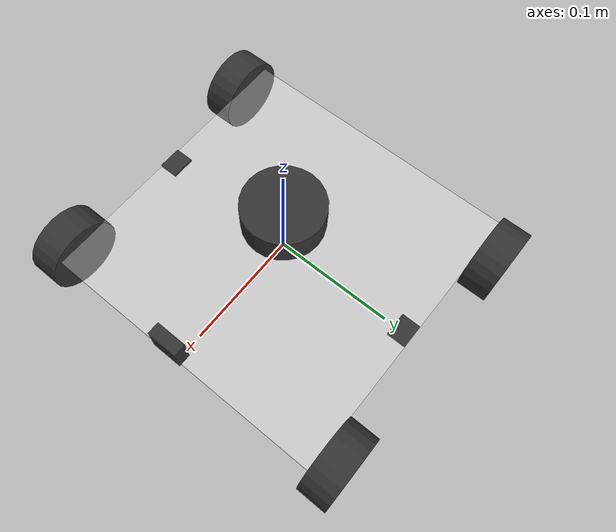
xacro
<?xml version="1.0"?>
<robot xmlns:xacro= "http://www.ros.org/wiki/xacro" name="roomba">
    <xacro:include filename="robot_core.xacro"/>
    <xacro:include filename="ros2_control.xacro"/>
    <xacro:include filename="lidar.xacro"/>
    <xacro:include filename="imu.xacro"/>
    <xacro:include filename="camera.xacro"/>
</robot>

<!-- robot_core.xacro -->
<robot xmlns:xacro= "http://www.ros.org/wiki/xacro">

    <xacro:include filename ="inertial_macros.xacro"/>

    <material name = "acrylic">
        <color rgba="1 1 1 0.3"/>
    </material>

    <material name = "black">
        <color rgba ="0.2 0.2 0.2 1"/>
    </material>

    <!-- Base Link -->
    <link name = "base_link">
    </link>

    <!-- BASE_FOOTPRINT_LINK -->
    <joint name = "base_footprint_joint" type = "fixed">
        <parent link = "base_link"/>
        <child link="base_footprint"/>
        <origin xyz = "0 0 0" rpy="0 0 0"/>
    </joint>

    <link name = "base_footprint">

    </link>

    <!-- Chassis Link -->
    <joint name = "chassis_joint" type = "fixed">
        <parent link = "base_link"/>
        <child link = "chassis"/>
        <origin xyz = "0 0 0"/>
    </joint>

    <link name = "chassis">
        <visual>
            <origin xyz = "0 0 0.0015"/>
            <geometry>
                <box size = "0.25 0.25 0.003"/>
            </geometry>
            <material name = "acrylic"/>
        </visual>
        <collision>
            <origin xyz = "0 0 0.0015"/>
            <geometry>
                <box size = "0.25 0.25 0.003"/>
            </geometry>
        </collision>
        <xacro:inertial_box mass = "0.12" x = "0.25" y = "0.25" z = "0.003">
            <origin xyz = "0 0 0.0015" rpy = "0 0 0"/>
        </xacro:inertial_box>
    </link>

    <gazebo reference="chassis">
        <material>Gazebo/GreyTransparent</material>
    </gazebo>

    <!-- Left Front Wheel Link -->
    <joint name = "left_front_wheel_joint" type = "continuous">
        <parent link = "base_link"/>
        <child link = "left_front_wheel"/>
        <origin xyz = "0.105191 0.137497 -0.01597" rpy = "-${pi/2} 0 0 "/>
        <axis xyz = "0 0 1"/>
    </joint>

    <link name = "left_front_wheel">
        <visual>
            <geometry>
                <cylinder radius="0.0325" length="0.026"/>
            </geometry>
            <material name = "black"/>
        </visual>
        <collision>
            <geometry>
                <sphere radius="0.0325" />
            </geometry>
        </collision>
        <xacro:inertial_cylinder mass = "0.1" length = "0.026" radius = "0.0325">
            <orgin xyz = "0 0 0" rpy = "0 0 0" />
        </xacro:inertial_cylinder>
    </link>

    <gazebo reference="left_front_wheel">
        <material>Gazebo/FlatBlack</material>
    </gazebo>

    <!-- Right Front Wheel Link -->
    <joint name = "right_front_wheel_joint" type = "continuous">
        <parent link = "base_link"/>
        <child link = "right_front_wheel"/>
        <origin xyz = "0.105191 -0.137497 -0.01597" rpy = "${pi/2} 0 0 "/>
        <axis xyz = "0 0 -1"/>
    </joint>

    <link name = "right_front_wheel">
        <visual>
            <geometry>
                <cylinder radius="0.0325" length="0.026"/>
            </geometry>
            <material name = "black"/>
        </visual>
        <collision>
            <geometry>
                <sphere radius="0.0325" />
            </geometry>
        </collision>
        <xacro:inertial_cylinder mass = "0.1" length = "0.026" radius = "0.0325">
            <orgin xyz = "0 0 0" rpy = "0 0 0" />
        </xacro:inertial_cylinder>
    </link>

    <gazebo reference="right_front_wheel">
        <material>Gazebo/FlatBlack</material>
    </gazebo>

    <!-- Left Back Wheel Link -->
    <joint name = "left_back_wheel_joint" type = "continuous">
        <parent link = "base_link"/>
        <child link = "left_back_wheel"/>
        <origin xyz = "-0.105191 0.137497 -0.01597" rpy = "-${pi/2} 0 0 "/>
        <axis xyz = "0 0 1"/>
    </joint>

    <link name = "left_back_wheel">
        <visual>
            <geometry>
                <cylinder radius="0.0325" length="0.026"/>
            </geometry>
            <material name = "black"/>
        </visual>
        <collision>
            <geometry>
                <sphere radius="0.0325" />
            </geometry>
        </collision>
        <xacro:inertial_cylinder mass = "0.1" length = "0.026" radius = "0.0325">
            <orgin xyz = "0 0 0" rpy = "0 0 0" />
        </xacro:inertial_cylinder>
    </link>

    <gazebo reference="left_back_wheel">
        <material>Gazebo/FlatBlack</material>
    </gazebo>

    <!-- Right Back Wheel Link -->
    <joint name = "right_back_wheel_joint" type = "continuous">
        <parent link = "base_link"/>
        <child link = "right_back_wheel"/>
        <origin xyz = "-0.105191 -0.137497 -0.01597" rpy = "${pi/2} 0 0 "/>
        <axis xyz = "0 0 -1"/>
    </joint>

    <link name = "right_back_wheel">
        <visual>
            <geometry>
                <cylinder radius="0.0325" length="0.026"/>
            </geometry>
            <material name = "black"/>
        </visual>
        <collision>
            <geometry>
                <sphere radius="0.0325" />
            </geometry>
        </collision>
        <xacro:inertial_cylinder mass = "0.1" length = "0.026" radius = "0.0325">
            <orgin xyz = "0 0 0" rpy = "0 0 0" />
        </xacro:inertial_cylinder>
    </link>

    <gazebo reference="right_back_wheel">
        <material>Gazebo/FlatBlack</material>
    </gazebo>

</robot>

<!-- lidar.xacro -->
<robot xmlns:xacro= "http://www.ros.org/wiki/xacro">

    <joint name = "laser_joint" type = "fixed">
        <parent link="chassis"/>
        <child link = "laser_frame"/>
        <origin xyz = "0 0 0.05325" rpy = "0 0 0"/>
    </joint>

    <link name = "laser_frame">
        <visual>
            <geometry>
                <cylinder radius="0.0328" length="0.0255"/>
            </geometry>
            <material name = "black"/>
        </visual>
        <collision>
            <geometry>
                <cylinder radius="0.0328" length="0.0255"/>
            </geometry>
        </collision>
        <xacro:inertial_cylinder mass = "0.1" length = "0.0255" radius = "0.0328">
            <orgin xyz = "0 0 0" rpy = "0 0 0" />
        </xacro:inertial_cylinder>
    </link>

    <gazebo reference="laser_frame">
        <sensor name = "laser" type = "ray">
            <pose>0 0 0 0 0 0</pose>
            <visualize>false</visualize>
            <update_rate>10</update_rate>
            <ray>
                <scan>
                    <horizontal>
                        <samples>360</samples>
                        <resolution>0.5</resolution>
                        <min_angle>-3.14</min_angle>
                        <max_angle>3.14</max_angle>
                    </horizontal>
                </scan>
                <range>
                    <min>0.12</min>
                    <max>10</max>
                    <resolution>0.01</resolution>
                </range>
                <noise>
                    <mean>0.0</mean>
                    <stddev>0.01</stddev>
                </noise>
            </ray>
            <plugin name = "laser_controller" filename="libgazebo_ros_ray_sensor.so">
                <ros>
                    <argument>~/out:=scan</argument>
                </ros>
                <output_type>sensor_msgs/LaserScan</output_type>
                <frame_name>laser_frame</frame_name>
            </plugin>
        </sensor>
        <material>Gazebo/FlatBlack</material>
    </gazebo>

</robot>

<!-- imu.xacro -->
<robot xmlns:xacro= "http://www.ros.org/wiki/xacro">

    <joint name = "imu_left_joint" type = "fixed">
        <parent link="chassis"/>
        <child link = "imu_left_link"/>
        <origin xyz = "0 0.117 0.004194" rpy = "0 0 0"/>
    </joint>

    <link name = "imu_left_link">
        <visual>
            <geometry>
                <box size="0.02 0.016 0.002"/>
            </geometry>
            <material name = "black"/>
        </visual>
    </link>

    <gazebo reference="imu_left_link">
        <gravity>true</gravity>
        <sensor name="imu_left_sensor" type="imu">
            <always_on>true</always_on>
            <update_rate>100</update_rate>
            <imu>
              <angular_velocity>
                <x>
                  <noise type="gaussian">
                    <mean>0.0</mean>
                    <stddev>2e-4</stddev>
                  </noise>
                </x>
                <y>
                  <noise type="gaussian">
                    <mean>0.0</mean>
                    <stddev>2e-4</stddev>
                  </noise>
                </y>
                <z>
                  <noise type="gaussian">
                    <mean>0.0</mean>
                    <stddev>2e-4</stddev>
                  </noise>
                </z>
              </angular_velocity>
              <linear_acceleration>
                <x>
                  <noise type="gaussian">
                    <mean>0.0</mean>
                    <stddev>1.7e-2</stddev>
                  </noise>
                </x>
                <y>
                  <noise type="gaussian">
                    <mean>0.0</mean>
                    <stddev>1.7e-2</stddev>
                  </noise>
                </y>
                <z>
                  <noise type="gaussian">
                    <mean>0.0</mean>
                    <stddev>1.7e-2</stddev>
                  </noise>
                </z>
              </linear_acceleration>
            </imu>
            <plugin name="imu_plugin_left" filename="libgazebo_ros_imu_sensor.so">
                <ros>
                    <namespace>imu_left</namespace>
                    <remapping>~/out:=imu</remapping>
                </ros>
                <initial_orientation_as_reference>false</initial_orientation_as_reference>
            </plugin>
        </sensor>
    </gazebo>

    <joint name = "imu_right_joint" type = "fixed">
        <parent link="chassis"/>
        <child link = "imu_right_link"/>
        <origin xyz = "0 -0.117 0.004194" rpy = "0 0 0"/>
    </joint>

    <link name = "imu_right_link">
        <visual>
            <geometry>
                <box size="0.02 0.016 0.002"/>
            </geometry>
            <material name = "black"/>
        </visual>
    </link>

    <gazebo reference="imu_right_link">
        <gravity>true</gravity>
        <sensor name="imu_right_sensor" type="imu">
            <always_on>true</always_on>
            <update_rate>100</update_rate>
            <imu>
              <angular_velocity>
                <x>
                  <noise type="gaussian">
                    <mean>0.0</mean>
                    <stddev>2e-4</stddev>
                  </noise>
                </x>
                <y>
                  <noise type="gaussian">
                    <mean>0.0</mean>
                    <stddev>2e-4</stddev>
                  </noise>
                </y>
                <z>
                  <noise type="gaussian">
                    <mean>0.0</mean>
                    <stddev>2e-4</stddev>
                  </noise>
                </z>
              </angular_velocity>
              <linear_acceleration>
                <x>
                  <noise type="gaussian">
                    <mean>0.0</mean>
                    <stddev>1.7e-2</stddev>
                  </noise>
                </x>
                <y>
                  <noise type="gaussian">
                    <mean>0.0</mean>
                    <stddev>1.7e-2</stddev>
                  </noise>
                </y>
                <z>
                  <noise type="gaussian">
                    <mean>0.0</mean>
                    <stddev>1.7e-2</stddev>
                  </noise>
                </z>
              </linear_acceleration>
            </imu>
            <plugin name="imu_plugin_right" filename="libgazebo_ros_imu_sensor.so">
                <ros>
                    <namespace>imu_right</namespace>
                    <remapping>~/out:=imu</remapping>
                </ros>
                <initial_orientation_as_reference>false</initial_orientation_as_reference>
            </plugin>
        </sensor>
    </gazebo>

</robot>

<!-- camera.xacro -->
<robot xmlns:xacro= "http://www.ros.org/wiki/xacro">

    <joint name = "camera_joint" type = "fixed">
        <parent link="chassis"/>
        <child link = "camera_link"/>
        <origin xyz = "0.125 0 0.04" rpy = "0 0 0"/>
    </joint>

    <link name = "camera_link">
        <visual>
            <geometry>
                <box size="0.01 0.025 0.025"/>
            </geometry>
            <material name = "black"/>
        </visual>
    </link>

    <joint name = "camera_optical_joint" type = "fixed">
        <parent link="camera_link"/>
        <child link = "camera_link_optical"/>
        <origin xyz = "0 0 0" rpy = "${-pi/2} 0 ${-pi/2}"/>
    </joint>

    <link name = "camera_link_optical">
    </link>

    <gazebo reference="camera_link">
        <sensor name = "camera" type = "camera">
            <pose>0 0 0 0 0 0</pose>
            <visualize>true</visualize>
            <update_rate>10</update_rate>
            <camera>
                <horizontal_fov>0.93375</horizontal_fov>
                <image>
                    <format>R8G8B8</format>
                    <width>640</width>
                    <height>480</height>
                </image>
                <clip>
                    <near>0.1</near>
                    <far>10</far>
                </clip>
            </camera>
            <plugin name = "camera_controller" filename="libgazebo_ros_camera.so">
                <frame_name>camera_link_optical</frame_name>
            </plugin>
        </sensor>
        <material>Gazebo/FlatBlack</material>
    </gazebo>

</robot>
